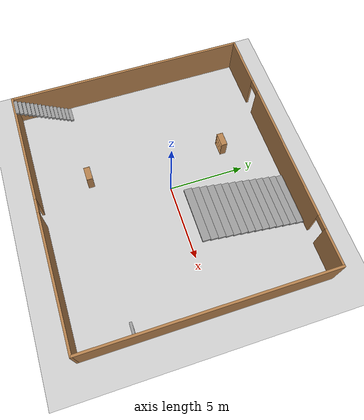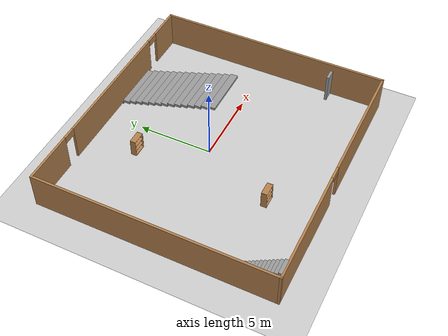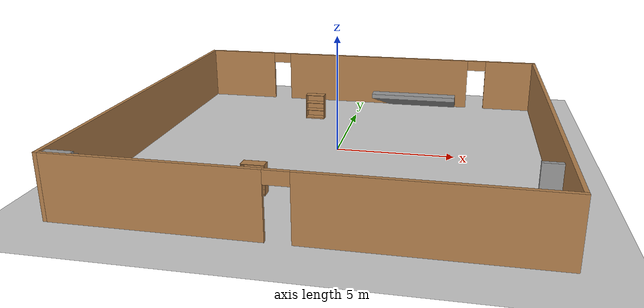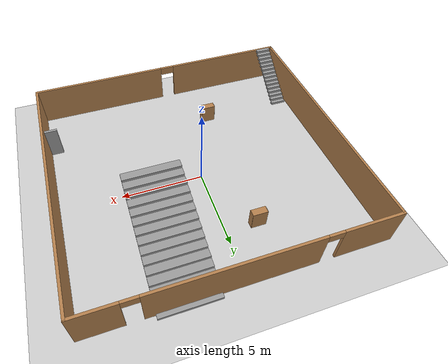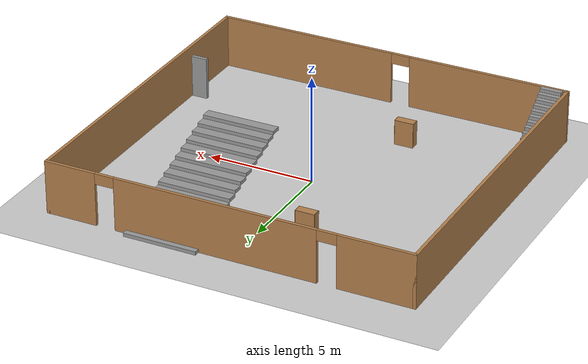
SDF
<sdf version="1.7">
 <world name="default">
  <light name="sun" type="directional">
   <pose>0 0 10 0 -0 0</pose>
   <diffuse>0.8 0.8 0.8 1</diffuse>
   <specular>0.2 0.2 0.2 1</specular>
   <attenuation>
    <range>1000</range>
    <constant>0.9</constant>
    <linear>0.01</linear>
    <quadratic>0.001</quadratic>
   </attenuation>
   <direction>-0.5 0.1 -0.9</direction>
   <spot><inner_angle>0</inner_angle><outer_angle>0</outer_angle><falloff>0</falloff></spot>
  </light>
  <model name="ground_plane">
   <static>1</static>
   <link name="link">
    <collision name="collision">
     <geometry><plane><normal>0 0 1</normal><size>100 100</size></plane></geometry>
     <surface>
      <contact><collide_bitmask>65535</collide_bitmask></contact>
      <friction><ode><mu>100</mu><mu2>50</mu2></ode></friction>
     </surface>
    </collision>
    <visual name="visual">
     <cast_shadows>0</cast_shadows>
     <geometry><plane><normal>0 0 1</normal><size>100 100</size></plane></geometry>
     <material>
      <script><uri>file://media/materials/scripts/gazebo.material</uri><name>Gazebo/Grey</name></script>
     </material>
    </visual>
   </link>
  </model>
  <gravity>0 0 -9.8</gravity>
  <magnetic_field>6e-06 2.3e-05 -4.2e-05</magnetic_field>
  <atmosphere type="adiabatic"/>
  <physics type="ode">
   <max_step_size>0.001</max_step_size>
   <real_time_factor>1</real_time_factor>
   <real_time_update_rate>1000</real_time_update_rate>
  </physics>
  <scene><ambient>0.4 0.4 0.4 1</ambient><background>0.7 0.7 0.7 1</background><shadows>1</shadows></scene>
  <spherical_coordinates>
   <surface_model>EARTH_WGS84</surface_model>
   <latitude_deg>0</latitude_deg>
   <longitude_deg>0</longitude_deg>
   <elevation>0</elevation>
   <heading_deg>0</heading_deg>
  </spherical_coordinates>
  <model name="floorplan">
   <pose>0.163859 -0.349863 0 0 -0 0</pose>
   <link name="Door_2">
    <collision name="Door_2_Collision">
     <geometry><box><size>0.9 0.17 2</size></box></geometry>
     <pose>0 0 1 0 -0 0</pose>
    </collision>
    <visual name="Door_2_Visual">
     <pose>0 0 1 0 -0 0</pose>
     <geometry><box><size>0.9 0.17 2</size></box></geometry>
     <material>
      <script><uri>file://media/materials/scripts/gazebo.material</uri><name>Gazebo/Grey</name></script>
     </material>
    </visual>
    <pose>8.1705 -4.58762 0 0 -0 0</pose>
   </link>
   <link name="Stairs_0">
    <visual name="Stairs_0_Visual_0">
     <pose>-7.8504 -4.63333 0.083333 0 -0 0</pose>
     <geometry><box><size>1 0.233333 0.166667</size></box></geometry>
     <material>
      <script><uri>file://media/materials/scripts/gazebo.material</uri><name>Gazebo/Grey</name></script>
      <ambient>1 1 1 1</ambient>
     </material>
     <meta><layer>0</layer></meta>
    </visual>
    <collision name="Stairs_0_Collision_0">
     <geometry><box><size>1 0.233333 0.166667</size></box></geometry>
     <pose>-7.8504 -4.63333 0.083333 0 -0 0</pose>
    </collision>
    <visual name="Stairs_0_Visual_1">
     <pose>-7.8504 -4.86666 0.25 0 -0 0</pose>
     <geometry><box><size>1 0.233333 0.166667</size></box></geometry>
     <material>
      <script><uri>file://media/materials/scripts/gazebo.material</uri><name>Gazebo/Grey</name></script>
      <ambient>1 1 1 1</ambient>
     </material>
     <meta><layer>0</layer></meta>
    </visual>
    <collision name="Stairs_0_Collision_1">
     <geometry><box><size>1 0.233333 0.166667</size></box></geometry>
     <pose>-7.8504 -4.86666 0.25 0 -0 0</pose>
    </collision>
    <visual name="Stairs_0_Visual_2">
     <pose>-7.8504 -5.1 0.416667 0 -0 0</pose>
     <geometry><box><size>1 0.233333 0.166667</size></box></geometry>
     <material>
      <script><uri>file://media/materials/scripts/gazebo.material</uri><name>Gazebo/Grey</name></script>
      <ambient>1 1 1 1</ambient>
     </material>
     <meta><layer>0</layer></meta>
    </visual>
    <collision name="Stairs_0_Collision_2">
     <geometry><box><size>1 0.233333 0.166667</size></box></geometry>
     <pose>-7.8504 -5.1 0.416667 0 -0 0</pose>
    </collision>
    <visual name="Stairs_0_Visual_3">
     <pose>-7.8504 -5.33333 0.583333 0 -0 0</pose>
     <geometry><box><size>1 0.233333 0.166667</size></box></geometry>
     <material>
      <script><uri>file://media/materials/scripts/gazebo.material</uri><name>Gazebo/Grey</name></script>
      <ambient>1 1 1 1</ambient>
     </material>
     <meta><layer>0</layer></meta>
    </visual>
    <collision name="Stairs_0_Collision_3">
     <geometry><box><size>1 0.233333 0.166667</size></box></geometry>
     <pose>-7.8504 -5.33333 0.583333 0 -0 0</pose>
    </collision>
    <visual name="Stairs_0_Visual_4">
     <pose>-7.8504 -5.56666 0.75 0 -0 0</pose>
     <geometry><box><size>1 0.233333 0.166667</size></box></geometry>
     <material>
      <script><uri>file://media/materials/scripts/gazebo.material</uri><name>Gazebo/Grey</name></script>
      <ambient>1 1 1 1</ambient>
     </material>
     <meta><layer>0</layer></meta>
    </visual>
    <collision name="Stairs_0_Collision_4">
     <geometry><box><size>1 0.233333 0.166667</size></box></geometry>
     <pose>-7.8504 -5.56666 0.75 0 -0 0</pose>
    </collision>
    <visual name="Stairs_0_Visual_5">
     <pose>-7.8504 -5.8 0.916667 0 -0 0</pose>
     <geometry><box><size>1 0.233333 0.166667</size></box></geometry>
     <material>
      <script><uri>file://media/materials/scripts/gazebo.material</uri><name>Gazebo/Grey</name></script>
      <ambient>1 1 1 1</ambient>
     </material>
     <meta><layer>0</layer></meta>
    </visual>
    <collision name="Stairs_0_Collision_5">
     <geometry><box><size>1 0.233333 0.166667</size></box></geometry>
     <pose>-7.8504 -5.8 0.916667 0 -0 0</pose>
    </collision>
    <visual name="Stairs_0_Visual_6">
     <pose>-7.8504 -6.03333 1.08333 0 -0 0</pose>
     <geometry><box><size>1 0.233333 0.166667</size></box></geometry>
     <material>
      <script><uri>file://media/materials/scripts/gazebo.material</uri><name>Gazebo/Grey</name></script>
      <ambient>1 1 1 1</ambient>
     </material>
     <meta><layer>0</layer></meta>
    </visual>
    <collision name="Stairs_0_Collision_6">
     <geometry><box><size>1 0.233333 0.166667</size></box></geometry>
     <pose>-7.8504 -6.03333 1.08333 0 -0 0</pose>
    </collision>
    <visual name="Stairs_0_Visual_7">
     <pose>-7.8504 -6.26666 1.25 0 -0 0</pose>
     <geometry><box><size>1 0.233333 0.166667</size></box></geometry>
     <material>
      <script><uri>file://media/materials/scripts/gazebo.material</uri><name>Gazebo/Grey</name></script>
      <ambient>1 1 1 1</ambient>
     </material>
     <meta><layer>0</layer></meta>
    </visual>
    <collision name="Stairs_0_Collision_7">
     <geometry><box><size>1 0.233333 0.166667</size></box></geometry>
     <pose>-7.8504 -6.26666 1.25 0 -0 0</pose>
    </collision>
    <visual name="Stairs_0_Visual_8">
     <pose>-7.8504 -6.5 1.41667 0 -0 0</pose>
     <geometry><box><size>1 0.233333 0.166667</size></box></geometry>
     <material>
      <script><uri>file://media/materials/scripts/gazebo.material</uri><name>Gazebo/Grey</name></script>
      <ambient>1 1 1 1</ambient>
     </material>
     <meta><layer>0</layer></meta>
    </visual>
    <collision name="Stairs_0_Collision_8">
     <geometry><box><size>1 0.233333 0.166667</size></box></geometry>
     <pose>-7.8504 -6.5 1.41667 0 -0 0</pose>
    </collision>
    <visual name="Stairs_0_Visual_9">
     <pose>-7.8504 -6.73333 1.58333 0 -0 0</pose>
     <geometry><box><size>1 0.233333 0.166667</size></box></geometry>
     <material>
      <script><uri>file://media/materials/scripts/gazebo.material</uri><name>Gazebo/Grey</name></script>
      <ambient>1 1 1 1</ambient>
     </material>
     <meta><layer>0</layer></meta>
    </visual>
    <collision name="Stairs_0_Collision_9">
     <geometry><box><size>1 0.233333 0.166667</size></box></geometry>
     <pose>-7.8504 -6.73333 1.58333 0 -0 0</pose>
    </collision>
    <visual name="Stairs_0_Visual_10">
     <pose>-7.8504 -6.96666 1.75 0 -0 0</pose>
     <geometry><box><size>1 0.233333 0.166667</size></box></geometry>
     <material>
      <script><uri>file://media/materials/scripts/gazebo.material</uri><name>Gazebo/Grey</name></script>
      <ambient>1 1 1 1</ambient>
     </material>
     <meta><layer>0</layer></meta>
    </visual>
    <collision name="Stairs_0_Collision_10">
     <geometry><box><size>1 0.233333 0.166667</size></box></geometry>
     <pose>-7.8504 -6.96666 1.75 0 -0 0</pose>
    </collision>
    <visual name="Stairs_0_Visual_11">
     <pose>-7.8504 -7.2 1.91667 0 -0 0</pose>
     <geometry><box><size>1 0.233333 0.166667</size></box></geometry>
     <material>
      <script><uri>file://media/materials/scripts/gazebo.material</uri><name>Gazebo/Grey</name></script>
      <ambient>1 1 1 1</ambient>
     </material>
     <meta><layer>0</layer></meta>
    </visual>
    <collision name="Stairs_0_Collision_11">
     <geometry><box><size>1 0.233333 0.166667</size></box></geometry>
     <pose>-7.8504 -7.2 1.91667 0 -0 0</pose>
    </collision>
    <visual name="Stairs_0_Visual_12">
     <pose>-7.8504 -7.43333 2.08333 0 -0 0</pose>
     <geometry><box><size>1 0.233333 0.166667</size></box></geometry>
     <material>
      <script><uri>file://media/materials/scripts/gazebo.material</uri><name>Gazebo/Grey</name></script>
      <ambient>1 1 1 1</ambient>
     </material>
     <meta><layer>0</layer></meta>
    </visual>
    <collision name="Stairs_0_Collision_12">
     <geometry><box><size>1 0.233333 0.166667</size></box></geometry>
     <pose>-7.8504 -7.43333 2.08333 0 -0 0</pose>
    </collision>
    <visual name="Stairs_0_Visual_13">
     <pose>-7.8504 -7.66666 2.25 0 -0 0</pose>
     <geometry><box><size>1 0.233333 0.166667</size></box></geometry>
     <material>
      <script><uri>file://media/materials/scripts/gazebo.material</uri><name>Gazebo/Grey</name></script>
      <ambient>1 1 1 1</ambient>
     </material>
     <meta><layer>0</layer></meta>
    </visual>
    <collision name="Stairs_0_Collision_13">
     <geometry><box><size>1 0.233333 0.166667</size></box></geometry>
     <pose>-7.8504 -7.66666 2.25 0 -0 0</pose>
    </collision>
    <visual name="Stairs_0_Visual_14">
     <pose>-7.8504 -7.9 2.41667 0 -0 0</pose>
     <geometry><box><size>1 0.233333 0.166667</size></box></geometry>
     <material>
      <script><uri>file://media/materials/scripts/gazebo.material</uri><name>Gazebo/Grey</name></script>
      <ambient>1 1 1 1</ambient>
     </material>
     <meta><layer>0</layer></meta>
    </visual>
    <collision name="Stairs_0_Collision_14">
     <geometry><box><size>1 0.233333 0.166667</size></box></geometry>
     <pose>-7.8504 -7.9 2.41667 0 -0 0</pose>
    </collision>
   </link>
   <link name="Stairs_1">
    <visual name="Stairs_1_Visual_0">
     <pose>2.99922 7.88135 0.083333 0 -0 0</pose>
     <geometry><box><size>3.44962 0.496614 0.166667</size></box></geometry>
     <material>
      <script><uri>file://media/materials/scripts/gazebo.material</uri><name>Gazebo/Grey</name></script>
      <ambient>1 1 1 1</ambient>
     </material>
     <meta><layer>0</layer></meta>
    </visual>
    <collision name="Stairs_1_Collision_0">
     <geometry><box><size>3.44962 0.496614 0.166667</size></box></geometry>
     <pose>2.99922 7.88135 0.083333 0 -0 0</pose>
    </collision>
    <visual name="Stairs_1_Visual_1">
     <pose>2.99922 7.38473 0.25 0 -0 0</pose>
     <geometry><box><size>3.44962 0.496614 0.166667</size></box></geometry>
     <material>
      <script><uri>file://media/materials/scripts/gazebo.material</uri><name>Gazebo/Grey</name></script>
      <ambient>1 1 1 1</ambient>
     </material>
     <meta><layer>0</layer></meta>
    </visual>
    <collision name="Stairs_1_Collision_1">
     <geometry><box><size>3.44962 0.496614 0.166667</size></box></geometry>
     <pose>2.99922 7.38473 0.25 0 -0 0</pose>
    </collision>
    <visual name="Stairs_1_Visual_2">
     <pose>2.99922 6.88812 0.416667 0 -0 0</pose>
     <geometry><box><size>3.44962 0.496614 0.166667</size></box></geometry>
     <material>
      <script><uri>file://media/materials/scripts/gazebo.material</uri><name>Gazebo/Grey</name></script>
      <ambient>1 1 1 1</ambient>
     </material>
     <meta><layer>0</layer></meta>
    </visual>
    <collision name="Stairs_1_Collision_2">
     <geometry><box><size>3.44962 0.496614 0.166667</size></box></geometry>
     <pose>2.99922 6.88812 0.416667 0 -0 0</pose>
    </collision>
    <visual name="Stairs_1_Visual_3">
     <pose>2.99922 6.39151 0.583333 0 -0 0</pose>
     <geometry><box><size>3.44962 0.496614 0.166667</size></box></geometry>
     <material>
      <script><uri>file://media/materials/scripts/gazebo.material</uri><name>Gazebo/Grey</name></script>
      <ambient>1 1 1 1</ambient>
     </material>
     <meta><layer>0</layer></meta>
    </visual>
    <collision name="Stairs_1_Collision_3">
     <geometry><box><size>3.44962 0.496614 0.166667</size></box></geometry>
     <pose>2.99922 6.39151 0.583333 0 -0 0</pose>
    </collision>
    <visual name="Stairs_1_Visual_4">
     <pose>2.99922 5.89489 0.75 0 -0 0</pose>
     <geometry><box><size>3.44962 0.496614 0.166667</size></box></geometry>
     <material>
      <script><uri>file://media/materials/scripts/gazebo.material</uri><name>Gazebo/Grey</name></script>
      <ambient>1 1 1 1</ambient>
     </material>
     <meta><layer>0</layer></meta>
    </visual>
    <collision name="Stairs_1_Collision_4">
     <geometry><box><size>3.44962 0.496614 0.166667</size></box></geometry>
     <pose>2.99922 5.89489 0.75 0 -0 0</pose>
    </collision>
    <visual name="Stairs_1_Visual_5">
     <pose>2.99922 5.39828 0.916667 0 -0 0</pose>
     <geometry><box><size>3.44962 0.496614 0.166667</size></box></geometry>
     <material>
      <script><uri>file://media/materials/scripts/gazebo.material</uri><name>Gazebo/Grey</name></script>
      <ambient>1 1 1 1</ambient>
     </material>
     <meta><layer>0</layer></meta>
    </visual>
    <collision name="Stairs_1_Collision_5">
     <geometry><box><size>3.44962 0.496614 0.166667</size></box></geometry>
     <pose>2.99922 5.39828 0.916667 0 -0 0</pose>
    </collision>
    <visual name="Stairs_1_Visual_6">
     <pose>2.99922 4.90167 1.08333 0 -0 0</pose>
     <geometry><box><size>3.44962 0.496614 0.166667</size></box></geometry>
     <material>
      <script><uri>file://media/materials/scripts/gazebo.material</uri><name>Gazebo/Grey</name></script>
      <ambient>1 1 1 1</ambient>
     </material>
     <meta><layer>0</layer></meta>
    </visual>
    <collision name="Stairs_1_Collision_6">
     <geometry><box><size>3.44962 0.496614 0.166667</size></box></geometry>
     <pose>2.99922 4.90167 1.08333 0 -0 0</pose>
    </collision>
    <visual name="Stairs_1_Visual_7">
     <pose>2.99922 4.40505 1.25 0 -0 0</pose>
     <geometry><box><size>3.44962 0.496614 0.166667</size></box></geometry>
     <material>
      <script><uri>file://media/materials/scripts/gazebo.material</uri><name>Gazebo/Grey</name></script>
      <ambient>1 1 1 1</ambient>
     </material>
     <meta><layer>0</layer></meta>
    </visual>
    <collision name="Stairs_1_Collision_7">
     <geometry><box><size>3.44962 0.496614 0.166667</size></box></geometry>
     <pose>2.99922 4.40505 1.25 0 -0 0</pose>
    </collision>
    <visual name="Stairs_1_Visual_8">
     <pose>2.99922 3.90844 1.41667 0 -0 0</pose>
     <geometry><box><size>3.44962 0.496614 0.166667</size></box></geometry>
     <material>
      <script><uri>file://media/materials/scripts/gazebo.material</uri><name>Gazebo/Grey</name></script>
      <ambient>1 1 1 1</ambient>
     </material>
     <meta><layer>0</layer></meta>
    </visual>
    <collision name="Stairs_1_Collision_8">
     <geometry><box><size>3.44962 0.496614 0.166667</size></box></geometry>
     <pose>2.99922 3.90844 1.41667 0 -0 0</pose>
    </collision>
    <visual name="Stairs_1_Visual_9">
     <pose>2.99922 3.41182 1.58333 0 -0 0</pose>
     <geometry><box><size>3.44962 0.496614 0.166667</size></box></geometry>
     <material>
      <script><uri>file://media/materials/scripts/gazebo.material</uri><name>Gazebo/Grey</name></script>
      <ambient>1 1 1 1</ambient>
     </material>
     <meta><layer>0</layer></meta>
    </visual>
    <collision name="Stairs_1_Collision_9">
     <geometry><box><size>3.44962 0.496614 0.166667</size></box></geometry>
     <pose>2.99922 3.41182 1.58333 0 -0 0</pose>
    </collision>
    <visual name="Stairs_1_Visual_10">
     <pose>2.99922 2.91521 1.75 0 -0 0</pose>
     <geometry><box><size>3.44962 0.496614 0.166667</size></box></geometry>
     <material>
      <script><uri>file://media/materials/scripts/gazebo.material</uri><name>Gazebo/Grey</name></script>
      <ambient>1 1 1 1</ambient>
     </material>
     <meta><layer>0</layer></meta>
    </visual>
    <collision name="Stairs_1_Collision_10">
     <geometry><box><size>3.44962 0.496614 0.166667</size></box></geometry>
     <pose>2.99922 2.91521 1.75 0 -0 0</pose>
    </collision>
    <visual name="Stairs_1_Visual_11">
     <pose>2.99922 2.4186 1.91667 0 -0 0</pose>
     <geometry><box><size>3.44962 0.496614 0.166667</size></box></geometry>
     <material>
      <script><uri>file://media/materials/scripts/gazebo.material</uri><name>Gazebo/Grey</name></script>
      <ambient>1 1 1 1</ambient>
     </material>
     <meta><layer>0</layer></meta>
    </visual>
    <collision name="Stairs_1_Collision_11">
     <geometry><box><size>3.44962 0.496614 0.166667</size></box></geometry>
     <pose>2.99922 2.4186 1.91667 0 -0 0</pose>
    </collision>
    <visual name="Stairs_1_Visual_12">
     <pose>2.99922 1.92198 2.08333 0 -0 0</pose>
     <geometry><box><size>3.44962 0.496614 0.166667</size></box></geometry>
     <material>
      <script><uri>file://media/materials/scripts/gazebo.material</uri><name>Gazebo/Grey</name></script>
      <ambient>1 1 1 1</ambient>
     </material>
     <meta><layer>0</layer></meta>
    </visual>
    <collision name="Stairs_1_Collision_12">
     <geometry><box><size>3.44962 0.496614 0.166667</size></box></geometry>
     <pose>2.99922 1.92198 2.08333 0 -0 0</pose>
    </collision>
    <visual name="Stairs_1_Visual_13">
     <pose>2.99922 1.42537 2.25 0 -0 0</pose>
     <geometry><box><size>3.44962 0.496614 0.166667</size></box></geometry>
     <material>
      <script><uri>file://media/materials/scripts/gazebo.material</uri><name>Gazebo/Grey</name></script>
      <ambient>1 1 1 1</ambient>
     </material>
     <meta><layer>0</layer></meta>
    </visual>
    <collision name="Stairs_1_Collision_13">
     <geometry><box><size>3.44962 0.496614 0.166667</size></box></geometry>
     <pose>2.99922 1.42537 2.25 0 -0 0</pose>
    </collision>
    <visual name="Stairs_1_Visual_14">
     <pose>2.99922 0.928756 2.41667 0 -0 0</pose>
     <geometry><box><size>3.44962 0.496614 0.166667</size></box></geometry>
     <material>
      <script><uri>file://media/materials/scripts/gazebo.material</uri><name>Gazebo/Grey</name></script>
      <ambient>1 1 1 1</ambient>
     </material>
     <meta><layer>0</layer></meta>
    </visual>
    <collision name="Stairs_1_Collision_14">
     <geometry><box><size>3.44962 0.496614 0.166667</size></box></geometry>
     <pose>2.99922 0.928756 2.41667 0 -0 0</pose>
    </collision>
   </link>
   <link name="Wall_3">
    <pose>-0 7.79535 0 0 -0 0</pose>
    <visual name="Wall_3_Visual_0">
     <pose>-6.85361 0 1.25 0 -0 0</pose>
     <geometry><box><size>3.54277 0.15 2.5</size></box></geometry>
     <material>
      <script><uri>file://media/materials/scripts/gazebo.material</uri><name>Gazebo/Wood</name></script>
      <ambient>1 1 1 1</ambient>
     </material>
     <meta><layer>0</layer></meta>
    </visual>
    <collision name="Wall_3_Collision_0">
     <geometry><box><size>3.54277 0.15 2.5</size></box></geometry>
     <pose>-6.85361 0 1.25 0 -0 0</pose>
    </collision>
    <visual name="Wall_3_Visual_1">
     <pose>0.548706 0 1.25 0 -0 0</pose>
     <geometry><box><size>9.46186 0.15 2.5</size></box></geometry>
     <material>
      <script><uri>file://media/materials/scripts/gazebo.material</uri><name>Gazebo/Wood</name></script>
      <ambient>1 1 1 1</ambient>
     </material>
     <meta><layer>0</layer></meta>
    </visual>
    <collision name="Wall_3_Collision_1">
     <geometry><box><size>9.46186 0.15 2.5</size></box></geometry>
     <pose>0.548706 0 1.25 0 -0 0</pose>
    </collision>
    <visual name="Wall_3_Visual_2">
     <pose>7.40232 0 1.25 0 -0 0</pose>
     <geometry><box><size>2.44536 0.15 2.5</size></box></geometry>
     <material>
      <script><uri>file://media/materials/scripts/gazebo.material</uri><name>Gazebo/Wood</name></script>
      <ambient>1 1 1 1</ambient>
     </material>
     <meta><layer>0</layer></meta>
    </visual>
    <collision name="Wall_3_Collision_2">
     <geometry><box><size>2.44536 0.15 2.5</size></box></geometry>
     <pose>7.40232 0 1.25 0 -0 0</pose>
    </collision>
    <visual name="Wall_3_Visual_3">
     <pose>-4.63223 0 2.25 0 -0 0</pose>
     <geometry><box><size>0.9 0.15 0.5</size></box></geometry>
     <material>
      <script><uri>file://media/materials/scripts/gazebo.material</uri><name>Gazebo/Wood</name></script>
      <ambient>1 1 1 1</ambient>
     </material>
     <meta><layer>0</layer></meta>
    </visual>
    <collision name="Wall_3_Collision_3">
     <geometry><box><size>0.9 0.15 0.5</size></box></geometry>
     <pose>-4.63223 0 2.25 0 -0 0</pose>
    </collision>
    <visual name="Wall_3_Visual_4">
     <pose>5.72964 0 2.25 0 -0 0</pose>
     <geometry><box><size>0.9 0.15 0.5</size></box></geometry>
     <material>
      <script><uri>file://media/materials/scripts/gazebo.material</uri><name>Gazebo/Wood</name></script>
      <ambient>1 1 1 1</ambient>
     </material>
     <meta><layer>0</layer></meta>
    </visual>
    <collision name="Wall_3_Collision_4">
     <geometry><box><size>0.9 0.15 0.5</size></box></geometry>
     <pose>5.72964 0 2.25 0 -0 0</pose>
    </collision>
   </link>
   <link name="Wall_4">
    <collision name="Wall_4_Collision">
     <geometry><box><size>16 0.15 2.5</size></box></geometry>
     <pose>0 0 1.25 0 -0 0</pose>
    </collision>
    <visual name="Wall_4_Visual">
     <pose>0 0 1.25 0 -0 0</pose>
     <geometry><box><size>16 0.15 2.5</size></box></geometry>
     <material>
      <script><uri>file://media/materials/scripts/gazebo.material</uri><name>Gazebo/Wood</name></script>
      <ambient>1 1 1 1</ambient>
     </material>
     <meta><layer>0</layer></meta>
    </visual>
    <pose>8.55 -0.129653 0 0 -0 -1.5708</pose>
   </link>
   <link name="Wall_5">
    <pose>-0 -8.05465 0 0 -0 3.14159</pose>
    <visual name="Wall_5_Visual_0">
     <pose>-4.3202 0 1.25 0 -0 0</pose>
     <geometry><box><size>8.60961 0.15 2.5</size></box></geometry>
     <material>
      <script><uri>file://media/materials/scripts/gazebo.material</uri><name>Gazebo/Wood</name></script>
      <ambient>1 1 1 1</ambient>
     </material>
     <meta><layer>0</layer></meta>
    </visual>
    <collision name="Wall_5_Collision_0">
     <geometry><box><size>8.60961 0.15 2.5</size></box></geometry>
     <pose>-4.3202 0 1.25 0 -0 0</pose>
    </collision>
    <visual name="Wall_5_Visual_1">
     <pose>4.75481 0 1.25 0 -0 0</pose>
     <geometry><box><size>7.74039 0.15 2.5</size></box></geometry>
     <material>
      <script><uri>file://media/materials/scripts/gazebo.material</uri><name>Gazebo/Wood</name></script>
      <ambient>1 1 1 1</ambient>
     </material>
     <meta><layer>0</layer></meta>
    </visual>
    <collision name="Wall_5_Collision_1">
     <geometry><box><size>7.74039 0.15 2.5</size></box></geometry>
     <pose>4.75481 0 1.25 0 -0 0</pose>
    </collision>
    <visual name="Wall_5_Visual_2">
     <pose>0.434611 0 2.25 0 -0 0</pose>
     <geometry><box><size>0.9 0.15 0.5</size></box></geometry>
     <material>
      <script><uri>file://media/materials/scripts/gazebo.material</uri><name>Gazebo/Wood</name></script>
      <ambient>1 1 1 1</ambient>
     </material>
     <meta><layer>0</layer></meta>
    </visual>
    <collision name="Wall_5_Collision_2">
     <geometry><box><size>0.9 0.15 0.5</size></box></geometry>
     <pose>0.434611 0 2.25 0 -0 0</pose>
    </collision>
   </link>
   <link name="Wall_6">
    <collision name="Wall_6_Collision">
     <geometry><box><size>16 0.15 2.5</size></box></geometry>
     <pose>0 0 1.25 0 -0 0</pose>
    </collision>
    <visual name="Wall_6_Visual">
     <pose>0 0 1.25 0 -0 0</pose>
     <geometry><box><size>16 0.15 2.5</size></box></geometry>
     <material>
      <script><uri>file://media/materials/scripts/gazebo.material</uri><name>Gazebo/Wood</name></script>
      <ambient>1 1 1 1</ambient>
     </material>
     <meta><layer>0</layer></meta>
    </visual>
    <pose>-8.55 -0.129653 0 0 -0 1.5708</pose>
   </link>
   <static>1</static>
  </model>
  <model name="bookshelf">
   <static>1</static>
   <link name="link">
    <inertial><mass>1</mass></inertial>
    <collision name="back">
     <pose>0 0.005 0.6 0 -0 0</pose>
     <geometry><box><size>0.9 0.01 1.2</size></box></geometry>
    </collision>
    <visual name="visual1">
     <pose>0 0.005 0.6 0 -0 0</pose>
     <geometry><box><size>0.9 0.01 1.2</size></box></geometry>
     <material>
      <script><uri>file://media/materials/scripts/gazebo.material</uri><name>Gazebo/Wood</name></script>
     </material>
    </visual>
    <collision name="left_side">
     <pose>0.45 -0.195 0.6 0 -0 0</pose>
     <geometry><box><size>0.02 0.4 1.2</size></box></geometry>
    </collision>
    <visual name="visual2">
     <pose>0.45 -0.195 0.6 0 -0 0</pose>
     <geometry><box><size>0.02 0.4 1.2</size></box></geometry>
     <material>
      <script><uri>file://media/materials/scripts/gazebo.material</uri><name>Gazebo/Wood</name></script>
     </material>
    </visual>
    <collision name="right_side">
     <pose>-0.45 -0.195 0.6 0 -0 0</pose>
     <geometry><box><size>0.02 0.4 1.2</size></box></geometry>
    </collision>
    <visual name="visual3">
     <pose>-0.45 -0.195 0.6 0 -0 0</pose>
     <geometry><box><size>0.02 0.4 1.2</size></box></geometry>
     <material>
      <script><uri>file://media/materials/scripts/gazebo.material</uri><name>Gazebo/Wood</name></script>
     </material>
    </visual>
    <collision name="bottom">
     <pose>0 -0.195 0.03 0 -0 0</pose>
     <geometry><box><size>0.88 0.4 0.06</size></box></geometry>
    </collision>
    <visual name="visual4">
     <pose>0 -0.195 0.03 0 -0 0</pose>
     <geometry><box><size>0.88 0.4 0.06</size></box></geometry>
     <material>
      <script><uri>file://media/materials/scripts/gazebo.material</uri><name>Gazebo/Wood</name></script>
     </material>
    </visual>
    <collision name="top">
     <pose>0 -0.195 1.19 0 -0 0</pose>
     <geometry><box><size>0.88 0.4 0.02</size></box></geometry>
    </collision>
    <visual name="visual5">
     <pose>0 -0.195 1.19 0 -0 0</pose>
     <geometry><box><size>0.88 0.4 0.02</size></box></geometry>
     <material>
      <script><uri>file://media/materials/scripts/gazebo.material</uri><name>Gazebo/Wood</name></script>
     </material>
    </visual>
    <collision name="low_shelf">
     <pose>0 -0.195 0.43 0 -0 0</pose>
     <geometry><box><size>0.88 0.4 0.02</size></box></geometry>
    </collision>
    <visual name="visual6">
     <pose>0 -0.195 0.43 0 -0 0</pose>
     <geometry><box><size>0.88 0.4 0.02</size></box></geometry>
     <material>
      <script><uri>file://media/materials/scripts/gazebo.material</uri><name>Gazebo/Wood</name></script>
     </material>
    </visual>
    <collision name="high_shelf">
     <pose>0 -0.195 0.8 0 -0 0</pose>
     <geometry><box><size>0.88 0.4 0.02</size></box></geometry>
    </collision>
    <visual name="visual7">
     <pose>0 -0.195 0.8 0 -0 0</pose>
     <geometry><box><size>0.88 0.4 0.02</size></box></geometry>
     <material>
      <script><uri>file://media/materials/scripts/gazebo.material</uri><name>Gazebo/Wood</name></script>
     </material>
    </visual>
   </link>
   <pose>-1.91388 4.4283 0 0 -0 0</pose>
  </model>
  <model name="bookshelf_0">
   <static>1</static>
   <link name="link">
    <inertial><mass>1</mass></inertial>
    <collision name="back">
     <pose>0 0.005 0.6 0 -0 0</pose>
     <geometry><box><size>0.9 0.01 1.2</size></box></geometry>
    </collision>
    <visual name="visual1">
     <pose>0 0.005 0.6 0 -0 0</pose>
     <geometry><box><size>0.9 0.01 1.2</size></box></geometry>
     <material>
      <script><uri>file://media/materials/scripts/gazebo.material</uri><name>Gazebo/Wood</name></script>
     </material>
    </visual>
    <collision name="left_side">
     <pose>0.45 -0.195 0.6 0 -0 0</pose>
     <geometry><box><size>0.02 0.4 1.2</size></box></geometry>
    </collision>
    <visual name="visual2">
     <pose>0.45 -0.195 0.6 0 -0 0</pose>
     <geometry><box><size>0.02 0.4 1.2</size></box></geometry>
     <material>
      <script><uri>file://media/materials/scripts/gazebo.material</uri><name>Gazebo/Wood</name></script>
     </material>
    </visual>
    <collision name="right_side">
     <pose>-0.45 -0.195 0.6 0 -0 0</pose>
     <geometry><box><size>0.02 0.4 1.2</size></box></geometry>
    </collision>
    <visual name="visual3">
     <pose>-0.45 -0.195 0.6 0 -0 0</pose>
     <geometry><box><size>0.02 0.4 1.2</size></box></geometry>
     <material>
      <script><uri>file://media/materials/scripts/gazebo.material</uri><name>Gazebo/Wood</name></script>
     </material>
    </visual>
    <collision name="bottom">
     <pose>0 -0.195 0.03 0 -0 0</pose>
     <geometry><box><size>0.88 0.4 0.06</size></box></geometry>
    </collision>
    <visual name="visual4">
     <pose>0 -0.195 0.03 0 -0 0</pose>
     <geometry><box><size>0.88 0.4 0.06</size></box></geometry>
     <material>
      <script><uri>file://media/materials/scripts/gazebo.material</uri><name>Gazebo/Wood</name></script>
     </material>
    </visual>
    <collision name="top">
     <pose>0 -0.195 1.19 0 -0 0</pose>
     <geometry><box><size>0.88 0.4 0.02</size></box></geometry>
    </collision>
    <visual name="visual5">
     <pose>0 -0.195 1.19 0 -0 0</pose>
     <geometry><box><size>0.88 0.4 0.02</size></box></geometry>
     <material>
      <script><uri>file://media/materials/scripts/gazebo.material</uri><name>Gazebo/Wood</name></script>
     </material>
    </visual>
    <collision name="low_shelf">
     <pose>0 -0.195 0.43 0 -0 0</pose>
     <geometry><box><size>0.88 0.4 0.02</size></box></geometry>
    </collision>
    <visual name="visual6">
     <pose>0 -0.195 0.43 0 -0 0</pose>
     <geometry><box><size>0.88 0.4 0.02</size></box></geometry>
     <material>
      <script><uri>file://media/materials/scripts/gazebo.material</uri><name>Gazebo/Wood</name></script>
     </material>
    </visual>
    <collision name="high_shelf">
     <pose>0 -0.195 0.8 0 -0 0</pose>
     <geometry><box><size>0.88 0.4 0.02</size></box></geometry>
    </collision>
    <visual name="visual7">
     <pose>0 -0.195 0.8 0 -0 0</pose>
     <geometry><box><size>0.88 0.4 0.02</size></box></geometry>
     <material>
      <script><uri>file://media/materials/scripts/gazebo.material</uri><name>Gazebo/Wood</name></script>
     </material>
    </visual>
   </link>
   <pose>-2.15301 -4.74829 0 0 -0 0</pose>
  </model>
  <plugin filename="gz-sim-wind-effects-system" name="gz::sim::systems::WindEffects">
   <force_approximation_scaling_factor>1</force_approximation_scaling_factor>
   <horizontal>
    <magnitude>
     <time_for_rise>10</time_for_rise>
     <sin><amplitude_percent>0.05</amplitude_percent><period>60</period></sin>
     <noise type="gaussian"><mean>0</mean><stddev>0.0002</stddev></noise>
    </magnitude>
    <direction>
     <time_for_rise>30</time_for_rise>
     <sin><amplitude>5</amplitude><period>20</period></sin>
     <noise type="gaussian"><mean>0</mean><stddev>0.03</stddev></noise>
    </direction>
   </horizontal>
   <vertical><noise type="gaussian"><mean>0</mean><stddev>0.03</stddev></noise></vertical>
  </plugin>
 </world>
</sdf>
